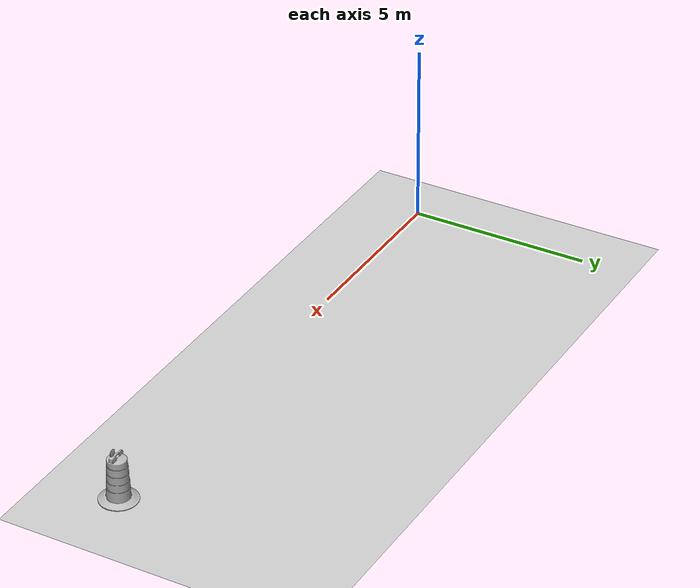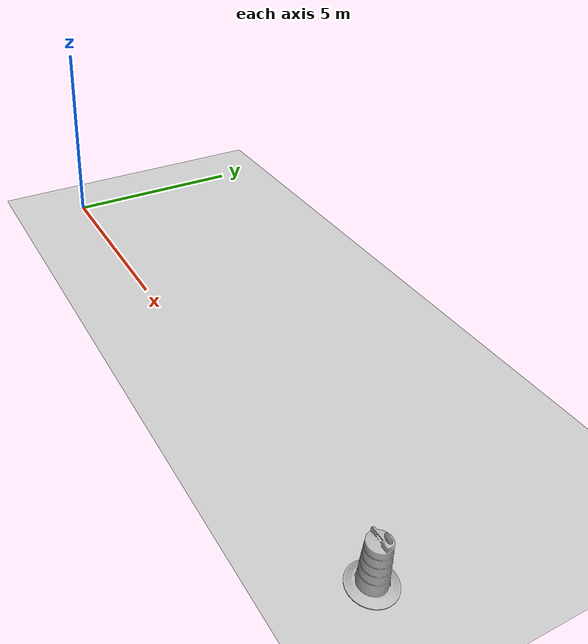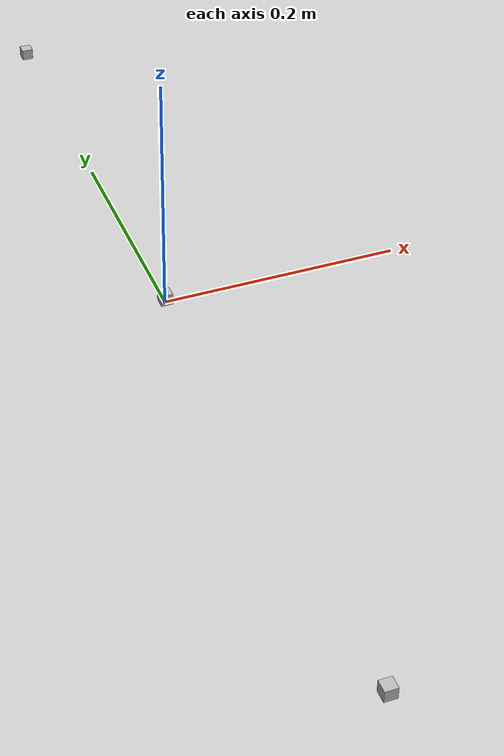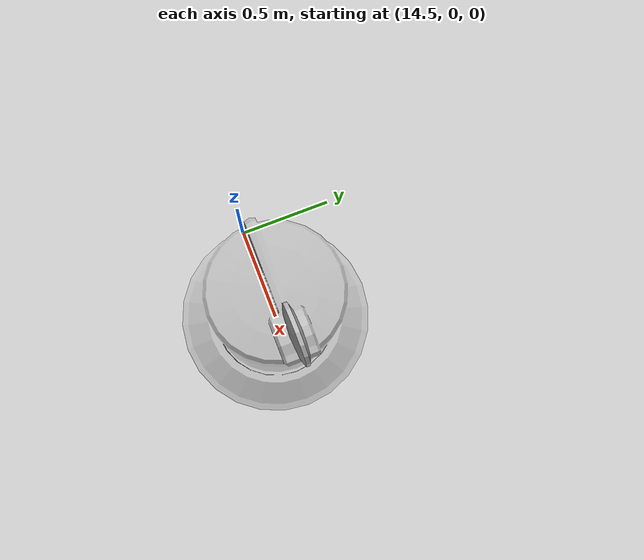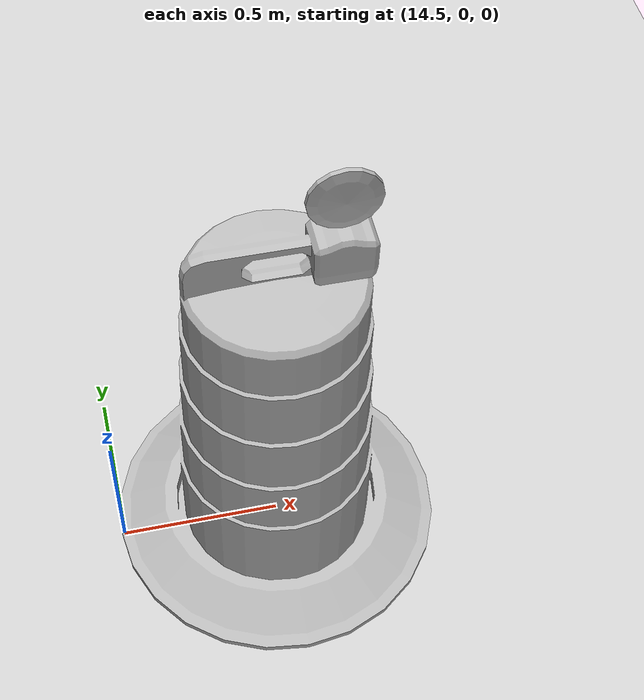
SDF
<sdf version="1.7">
 <world name="default">
  <light name="sun" type="directional">
   <pose>0 0 10 0 -0 0</pose>
   <diffuse>0.8 0.8 0.8 1</diffuse>
   <specular>0.2 0.2 0.2 1</specular>
   <attenuation>
    <range>1000</range>
    <constant>0.9</constant>
    <linear>0.01</linear>
    <quadratic>0.001</quadratic>
   </attenuation>
   <direction>-0.5 0.1 -0.9</direction>
   <spot><inner_angle>0</inner_angle><outer_angle>0</outer_angle><falloff>0</falloff></spot>
  </light>
  <model name="ground_plane">
   <static>1</static>
   <link name="link">
    <collision name="collision">
     <geometry><plane><normal>0 0 1</normal><size>100 100</size></plane></geometry>
     <surface>
      <contact><collide_bitmask>65535</collide_bitmask></contact>
      <friction><ode><mu>100</mu><mu2>50</mu2></ode></friction>
     </surface>
    </collision>
    <visual name="visual">
     <cast_shadows>0</cast_shadows>
     <geometry><plane><normal>0 0 1</normal><size>100 100</size></plane></geometry>
     <material>
      <script><uri>file://media/materials/scripts/gazebo.material</uri><name>Gazebo/Grey</name></script>
     </material>
    </visual>
   </link>
  </model>
  <gravity>0 0 -9.8</gravity>
  <magnetic_field>6e-06 2.3e-05 -4.2e-05</magnetic_field>
  <atmosphere type="adiabatic"/>
  <physics type="ode">
   <max_step_size>0.001</max_step_size>
   <real_time_factor>1</real_time_factor>
   <real_time_update_rate>1000</real_time_update_rate>
  </physics>
  <scene><ambient>0.4 0.4 0.4 1</ambient><background>0.7 0.7 0.7 1</background><shadows>1</shadows></scene>
  <spherical_coordinates>
   <surface_model>EARTH_WGS84</surface_model>
   <latitude_deg>0</latitude_deg>
   <longitude_deg>0</longitude_deg>
   <elevation>0</elevation>
   <heading_deg>0</heading_deg>
  </spherical_coordinates>
  <model name="robot">
   <link name="base_link">
    <inertial>
     <mass>0.003</mass>
     <inertia>
      <ixx>0.0006528</ixx>
      <ixy>0</ixy>
      <ixz>0</ixz>
      <iyy>0.0003</iyy>
      <iyz>0</iyz>
      <izz>0.0006528</izz>
     </inertia>
    </inertial>
    <collision name="base_link_fixed_joint_lump__center_link_collision">
     <geometry><box><size>0.01 0.01 0.01</size></box></geometry>
    </collision>
    <collision name="base_link_fixed_joint_lump__left_link_collision_1">
     <pose>0 0.42 0 0 -0 0</pose>
     <geometry><box><size>0.01 0.01 0.01</size></box></geometry>
    </collision>
    <collision name="base_link_fixed_joint_lump__right_link_collision_2">
     <pose>0 -0.42 0 0 -0 0</pose>
     <geometry><box><size>0.01 0.01 0.01</size></box></geometry>
    </collision>
    <visual name="base_link_fixed_joint_lump__center_link_visual">
     <geometry><box><size>0.01 0.01 0.01</size></box></geometry>
    </visual>
    <visual name="base_link_fixed_joint_lump__left_link_visual_1">
     <pose>0 0.42 0 0 -0 0</pose>
     <geometry><box><size>0.01 0.01 0.01</size></box></geometry>
    </visual>
    <visual name="base_link_fixed_joint_lump__right_link_visual_2">
     <pose>0 -0.42 0 0 -0 0</pose>
     <geometry><box><size>0.01 0.01 0.01</size></box></geometry>
    </visual>
    <sensor name="center_camera_sensor" type="camera">
     <update_rate>10</update_rate>
     <camera>
      <horizontal_fov>0.0548311</horizontal_fov>
      <image><format>R8G8B8</format><width>320</width><height>240</height></image>
      <clip><near>0.01</near><far>100</far></clip>
     </camera>
     <plugin name="center_camera_controller" filename="libgazebo_ros_camera.so">
      <cameraName>center</cameraName>
      <imageTopicName>image_raw</imageTopicName>
      <cameraInfoTopicName>camera_info</cameraInfoTopicName>
      <frameName>center_optical_frame</frameName>
      <robotNamespace>/</robotNamespace>
     </plugin>
    </sensor>
    <sensor name="left_camera_sensor" type="camera">
     <update_rate>10</update_rate>
     <camera>
      <horizontal_fov>0.0548311</horizontal_fov>
      <image><format>R8G8B8</format><width>320</width><height>240</height></image>
      <clip><near>0.01</near><far>100</far></clip>
     </camera>
     <plugin name="left_camera_controller" filename="libgazebo_ros_camera.so">
      <cameraName>left</cameraName>
      <imageTopicName>image_raw</imageTopicName>
      <cameraInfoTopicName>camera_info</cameraInfoTopicName>
      <frameName>left_optical_frame</frameName>
      <robotNamespace>/</robotNamespace>
     </plugin>
     <pose>0 0.42 0 0 -0 0</pose>
    </sensor>
    <sensor name="right_camera_sensor" type="camera">
     <update_rate>10</update_rate>
     <camera>
      <horizontal_fov>0.0548311</horizontal_fov>
      <image><format>R8G8B8</format><width>320</width><height>240</height></image>
      <clip><near>0.01</near><far>100</far></clip>
     </camera>
     <plugin name="right_camera_controller" filename="libgazebo_ros_camera.so">
      <cameraName>right</cameraName>
      <imageTopicName>image_raw</imageTopicName>
      <cameraInfoTopicName>camera_info</cameraInfoTopicName>
      <frameName>right_optical_frame</frameName>
      <robotNamespace>/</robotNamespace>
     </plugin>
     <pose>0 -0.42 0 0 -0 0</pose>
    </sensor>
   </link>
   <pose>0 -0 0.004991 3e-06 2e-06 0</pose>
  </model>
  <model name="Construction Barrel">
   <link name="link">
    <inertial>
     <pose>0 0 0.4 0 -0 0</pose>
     <mass>500</mass>
     <inertia><ixx>51.2096</ixx><iyy>51.2096</iyy><izz>25</izz><ixy>0</ixy><ixz>0</ixz><iyz>0</iyz></inertia>
    </inertial>
    <collision name="collision">
     <geometry><mesh><uri>model://construction_barrel/meshes/construction_barrel.dae</uri></mesh></geometry>
    </collision>
    <visual name="visual">
     <geometry><mesh><uri>model://construction_barrel/meshes/construction_barrel.dae</uri></mesh></geometry>
    </visual>
   </link>
   <pose>15 -2e-06 -0 1e-06 -1e-06 -5e-06</pose>
  </model>
 </world>
</sdf>
